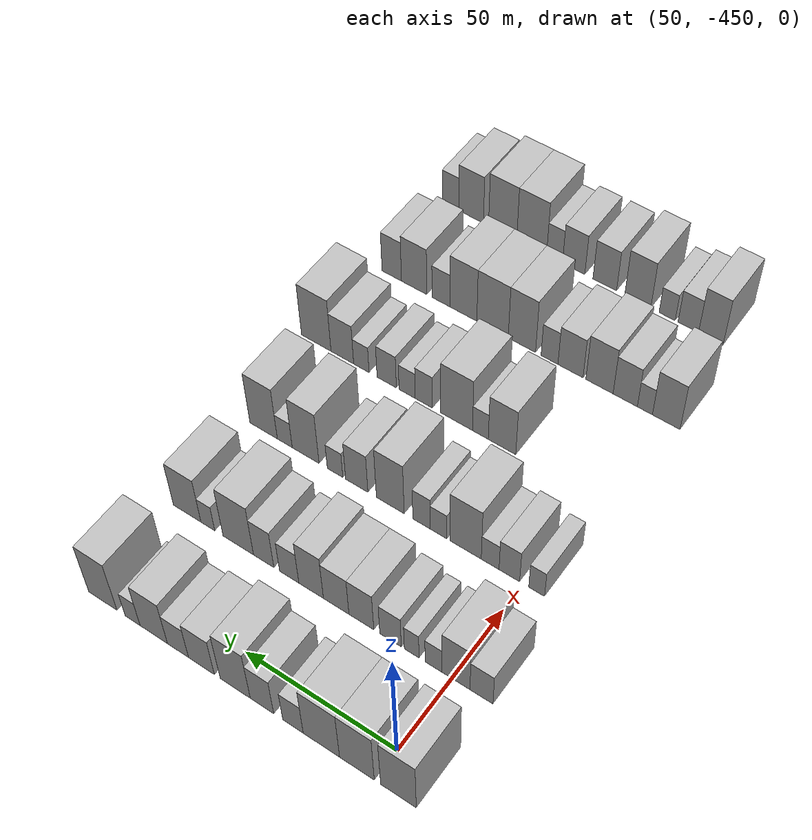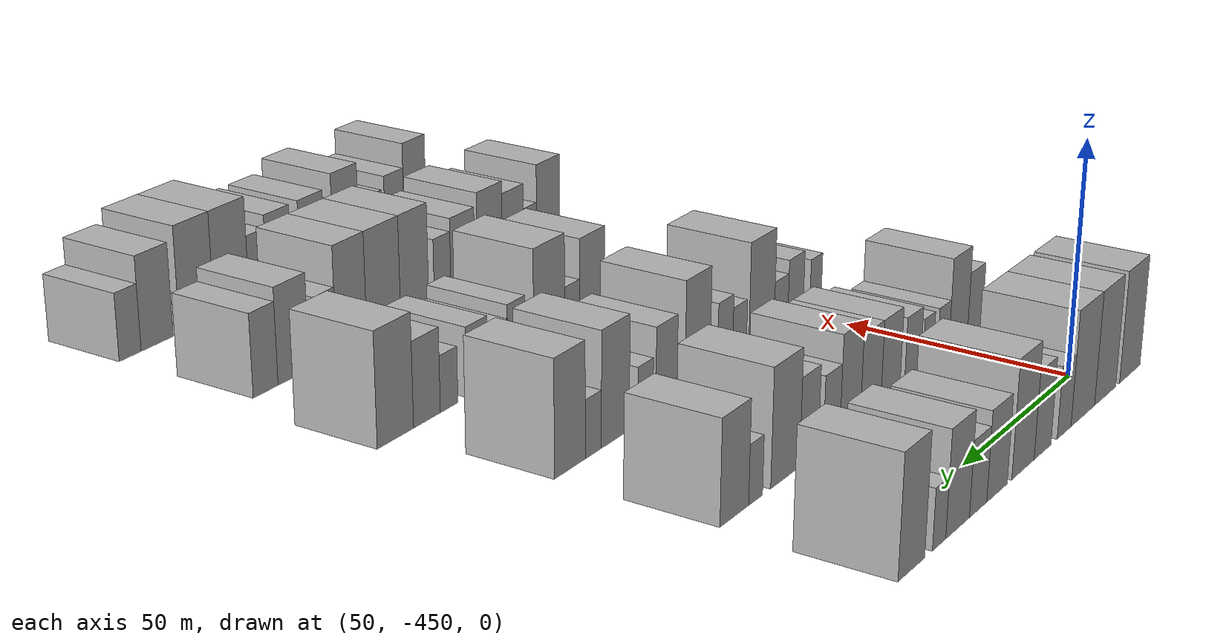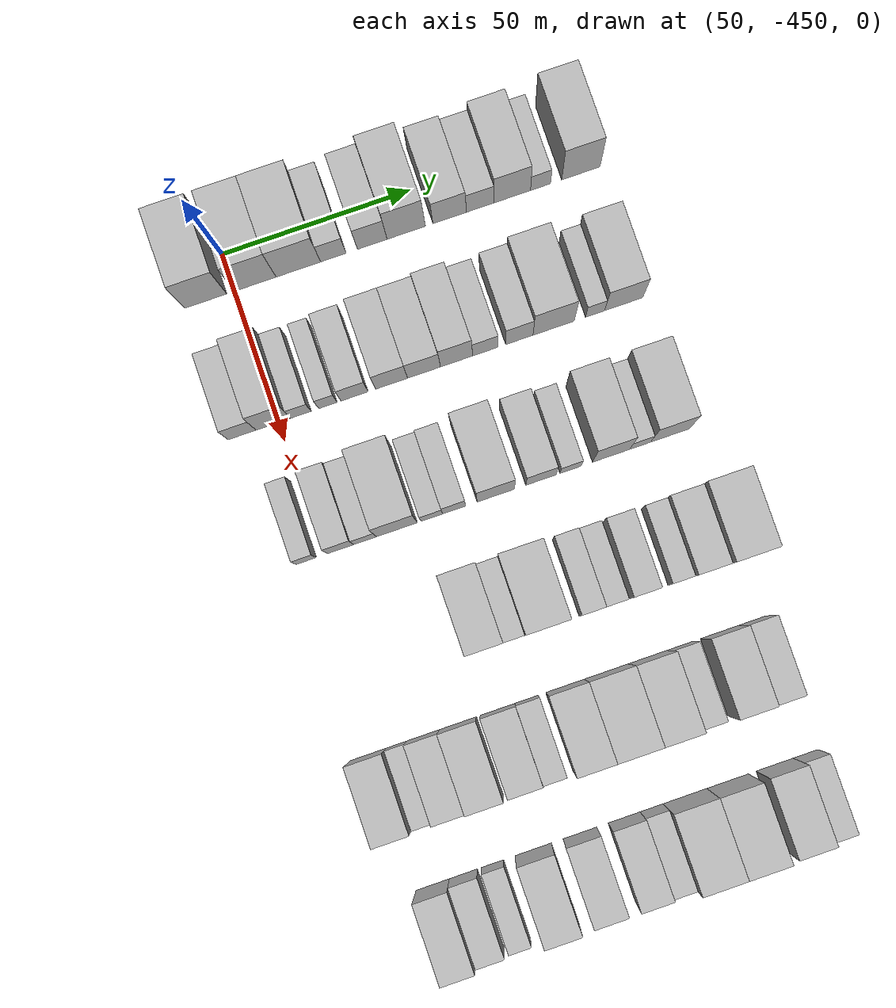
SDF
<sdf version="1.6">
 <world name="default">
  <model name="building_13">
   <static>1</static>
   <pose>50.0000 -457.4767 0 0.000000 0.000000 0.000000</pose>
   <link name="link">
    <pose>0 0 12.00 0 0 0</pose>
    <collision name="collision"><geometry><box><size>20.0000 11.1413 24.0000</size></box></geometry></collision>
    <visual name="visual">
     <cast_shadows>0</cast_shadows>
     <geometry><box><size>20.0000 11.1413 24.0000</size></box></geometry>
     <material>
      <script>
       <uri>model://HANNAS_wall/materials/scripts</uri>
       <uri>model://HANNAS_wall/materials/textures</uri>
       <name>vrc/HANNAS_wall</name>
      </script>
     </material>
    </visual>
   </link>
  </model>
  <model name="building_14">
   <static>1</static>
   <pose>50.0000 -444.3810 0 0.000000 0.000000 0.000000</pose>
   <link name="link">
    <pose>0 0 12.00 0 0 0</pose>
    <collision name="collision"><geometry><box><size>20.0000 11.0501 24.0000</size></box></geometry></collision>
    <visual name="visual">
     <cast_shadows>0</cast_shadows>
     <geometry><box><size>20.0000 11.0501 24.0000</size></box></geometry>
     <material>
      <script>
       <uri>model://HANNAS_wall/materials/scripts</uri>
       <uri>model://HANNAS_wall/materials/textures</uri>
       <name>vrc/HANNAS_wall</name>
      </script>
     </material>
    </visual>
   </link>
  </model>
  <model name="building_15">
   <static>1</static>
   <pose>50.0000 -432.9555 0 0.000000 0.000000 0.000000</pose>
   <link name="link">
    <pose>0 0 12.00 0 0 0</pose>
    <collision name="collision"><geometry><box><size>20.0000 11.8011 24.0000</size></box></geometry></collision>
    <visual name="visual">
     <cast_shadows>0</cast_shadows>
     <geometry><box><size>20.0000 11.8011 24.0000</size></box></geometry>
     <material>
      <script>
       <uri>model://HANNAS_wall/materials/scripts</uri>
       <uri>model://HANNAS_wall/materials/textures</uri>
       <name>vrc/HANNAS_wall</name>
      </script>
     </material>
    </visual>
   </link>
  </model>
  <model name="building_16">
   <static>1</static>
   <pose>50.0000 -423.6860 0 0.000000 0.000000 0.000000</pose>
   <link name="link">
    <pose>0 0 7.50 0 0 0</pose>
    <collision name="collision"><geometry><box><size>20.0000 6.7377 15.0000</size></box></geometry></collision>
    <visual name="visual">
     <cast_shadows>0</cast_shadows>
     <geometry><box><size>20.0000 6.7377 15.0000</size></box></geometry>
     <material>
      <script>
       <uri>model://HANNAS_wall/materials/scripts</uri>
       <uri>model://HANNAS_wall/materials/textures</uri>
       <name>vrc/HANNAS_wall</name>
      </script>
     </material>
    </visual>
   </link>
  </model>
  <model name="building_17">
   <static>1</static>
   <pose>50.0000 -413.3966 0 0.000000 0.000000 0.000000</pose>
   <link name="link">
    <pose>0 0 9.00 0 0 0</pose>
    <collision name="collision"><geometry><box><size>20.0000 7.8412 18.0000</size></box></geometry></collision>
    <visual name="visual">
     <cast_shadows>0</cast_shadows>
     <geometry><box><size>20.0000 7.8412 18.0000</size></box></geometry>
     <material>
      <script>
       <uri>model://HANNAS_wall/materials/scripts</uri>
       <uri>model://HANNAS_wall/materials/textures</uri>
       <name>vrc/HANNAS_wall</name>
      </script>
     </material>
    </visual>
   </link>
  </model>
  <model name="building_18">
   <static>1</static>
   <pose>50.0000 -404.3822 0 0.000000 0.000000 0.000000</pose>
   <link name="link">
    <pose>0 0 12.00 0 0 0</pose>
    <collision name="collision"><geometry><box><size>20.0000 10.1875 24.0000</size></box></geometry></collision>
    <visual name="visual">
     <cast_shadows>0</cast_shadows>
     <geometry><box><size>20.0000 10.1875 24.0000</size></box></geometry>
     <material>
      <script>
       <uri>model://HANNAS_wall/materials/scripts</uri>
       <uri>model://HANNAS_wall/materials/textures</uri>
       <name>vrc/HANNAS_wall</name>
      </script>
     </material>
    </visual>
   </link>
  </model>
  <model name="building_19">
   <static>1</static>
   <pose>50.0000 -392.8344 0 0.000000 0.000000 0.000000</pose>
   <link name="link">
    <pose>0 0 9.00 0 0 0</pose>
    <collision name="collision"><geometry><box><size>20.0000 8.9080 18.0000</size></box></geometry></collision>
    <visual name="visual">
     <cast_shadows>0</cast_shadows>
     <geometry><box><size>20.0000 8.9080 18.0000</size></box></geometry>
     <material>
      <script>
       <uri>model://HANNAS_wall/materials/scripts</uri>
       <uri>model://HANNAS_wall/materials/textures</uri>
       <name>vrc/HANNAS_wall</name>
      </script>
     </material>
    </visual>
   </link>
  </model>
  <model name="building_20">
   <static>1</static>
   <pose>50.0000 -384.7069 0 0.000000 0.000000 0.000000</pose>
   <link name="link">
    <pose>0 0 7.50 0 0 0</pose>
    <collision name="collision"><geometry><box><size>20.0000 7.3471 15.0000</size></box></geometry></collision>
    <visual name="visual">
     <cast_shadows>0</cast_shadows>
     <geometry><box><size>20.0000 7.3471 15.0000</size></box></geometry>
     <material>
      <script>
       <uri>model://HANNAS_wall/materials/scripts</uri>
       <uri>model://HANNAS_wall/materials/textures</uri>
       <name>vrc/HANNAS_wall</name>
      </script>
     </material>
    </visual>
   </link>
  </model>
  <model name="building_21">
   <static>1</static>
   <pose>50.0000 -376.1818 0 0.000000 0.000000 0.000000</pose>
   <link name="link">
    <pose>0 0 10.50 0 0 0</pose>
    <collision name="collision"><geometry><box><size>20.0000 9.7030 21.0000</size></box></geometry></collision>
    <visual name="visual">
     <cast_shadows>0</cast_shadows>
     <geometry><box><size>20.0000 9.7030 21.0000</size></box></geometry>
     <material>
      <script>
       <uri>model://HANNAS_wall/materials/scripts</uri>
       <uri>model://HANNAS_wall/materials/textures</uri>
       <name>vrc/HANNAS_wall</name>
      </script>
     </material>
    </visual>
   </link>
  </model>
  <model name="building_22">
   <static>1</static>
   <pose>50.0000 -368.6745 0 0.000000 0.000000 0.000000</pose>
   <link name="link">
    <pose>0 0 6.00 0 0 0</pose>
    <collision name="collision"><geometry><box><size>20.0000 5.3117 12.0000</size></box></geometry></collision>
    <visual name="visual">
     <cast_shadows>0</cast_shadows>
     <geometry><box><size>20.0000 5.3117 12.0000</size></box></geometry>
     <material>
      <script>
       <uri>model://HANNAS_wall/materials/scripts</uri>
       <uri>model://HANNAS_wall/materials/textures</uri>
       <name>vrc/HANNAS_wall</name>
      </script>
     </material>
    </visual>
   </link>
  </model>
  <model name="building_23">
   <static>1</static>
   <pose>50.0000 -357.9048 0 0.000000 0.000000 0.000000</pose>
   <link name="link">
    <pose>0 0 12.00 0 0 0</pose>
    <collision name="collision"><geometry><box><size>20.0000 10.2275 24.0000</size></box></geometry></collision>
    <visual name="visual">
     <cast_shadows>0</cast_shadows>
     <geometry><box><size>20.0000 10.2275 24.0000</size></box></geometry>
     <material>
      <script>
       <uri>model://HANNAS_wall/materials/scripts</uri>
       <uri>model://HANNAS_wall/materials/textures</uri>
       <name>vrc/HANNAS_wall</name>
      </script>
     </material>
    </visual>
   </link>
  </model>
  <model name="building_143">
   <static>1</static>
   <pose>85.0000 -459.5053 0 0.000000 0.000000 0.000000</pose>
   <link name="link">
    <pose>0 0 7.50 0 0 0</pose>
    <collision name="collision"><geometry><box><size>20.0000 7.3182 15.0000</size></box></geometry></collision>
    <visual name="visual">
     <cast_shadows>0</cast_shadows>
     <geometry><box><size>20.0000 7.3182 15.0000</size></box></geometry>
     <material>
      <script>
       <uri>model://HANNAS_wall/materials/scripts</uri>
       <uri>model://HANNAS_wall/materials/textures</uri>
       <name>vrc/HANNAS_wall</name>
      </script>
     </material>
    </visual>
   </link>
  </model>
  <model name="building_144">
   <static>1</static>
   <pose>85.0000 -451.3330 0 0.000000 0.000000 0.000000</pose>
   <link name="link">
    <pose>0 0 10.50 0 0 0</pose>
    <collision name="collision"><geometry><box><size>20.0000 9.0265 21.0000</size></box></geometry></collision>
    <visual name="visual">
     <cast_shadows>0</cast_shadows>
     <geometry><box><size>20.0000 9.0265 21.0000</size></box></geometry>
     <material>
      <script>
       <uri>model://HANNAS_wall/materials/scripts</uri>
       <uri>model://HANNAS_wall/materials/textures</uri>
       <name>vrc/HANNAS_wall</name>
      </script>
     </material>
    </visual>
   </link>
  </model>
  <model name="building_145">
   <static>1</static>
   <pose>85.0000 -444.0921 0 0.000000 0.000000 0.000000</pose>
   <link name="link">
    <pose>0 0 6.00 0 0 0</pose>
    <collision name="collision"><geometry><box><size>20.0000 5.4553 12.0000</size></box></geometry></collision>
    <visual name="visual">
     <cast_shadows>0</cast_shadows>
     <geometry><box><size>20.0000 5.4553 12.0000</size></box></geometry>
     <material>
      <script>
       <uri>model://HANNAS_wall/materials/scripts</uri>
       <uri>model://HANNAS_wall/materials/textures</uri>
       <name>vrc/HANNAS_wall</name>
      </script>
     </material>
    </visual>
   </link>
  </model>
  <model name="building_146">
   <static>1</static>
   <pose>85.0000 -436.9445 0 0.000000 0.000000 0.000000</pose>
   <link name="link">
    <pose>0 0 6.00 0 0 0</pose>
    <collision name="collision"><geometry><box><size>20.0000 4.8400 12.0000</size></box></geometry></collision>
    <visual name="visual">
     <cast_shadows>0</cast_shadows>
     <geometry><box><size>20.0000 4.8400 12.0000</size></box></geometry>
     <material>
      <script>
       <uri>model://HANNAS_wall/materials/scripts</uri>
       <uri>model://HANNAS_wall/materials/textures</uri>
       <name>vrc/HANNAS_wall</name>
      </script>
     </material>
    </visual>
   </link>
  </model>
  <model name="building_147">
   <static>1</static>
   <pose>85.0000 -429.9540 0 0.000000 0.000000 0.000000</pose>
   <link name="link">
    <pose>0 0 7.50 0 0 0</pose>
    <collision name="collision"><geometry><box><size>20.0000 7.1410 15.0000</size></box></geometry></collision>
    <visual name="visual">
     <cast_shadows>0</cast_shadows>
     <geometry><box><size>20.0000 7.1410 15.0000</size></box></geometry>
     <material>
      <script>
       <uri>model://HANNAS_wall/materials/scripts</uri>
       <uri>model://HANNAS_wall/materials/textures</uri>
       <name>vrc/HANNAS_wall</name>
      </script>
     </material>
    </visual>
   </link>
  </model>
  <model name="building_148">
   <static>1</static>
   <pose>85.0000 -420.1908 0 0.000000 0.000000 0.000000</pose>
   <link name="link">
    <pose>0 0 9.00 0 0 0</pose>
    <collision name="collision"><geometry><box><size>20.0000 8.3854 18.0000</size></box></geometry></collision>
    <visual name="visual">
     <cast_shadows>0</cast_shadows>
     <geometry><box><size>20.0000 8.3854 18.0000</size></box></geometry>
     <material>
      <script>
       <uri>model://HANNAS_wall/materials/scripts</uri>
       <uri>model://HANNAS_wall/materials/textures</uri>
       <name>vrc/HANNAS_wall</name>
      </script>
     </material>
    </visual>
   </link>
  </model>
  <model name="building_149">
   <static>1</static>
   <pose>85.0000 -411.6454 0 0.000000 0.000000 0.000000</pose>
   <link name="link">
    <pose>0 0 9.00 0 0 0</pose>
    <collision name="collision"><geometry><box><size>20.0000 8.7055 18.0000</size></box></geometry></collision>
    <visual name="visual">
     <cast_shadows>0</cast_shadows>
     <geometry><box><size>20.0000 8.7055 18.0000</size></box></geometry>
     <material>
      <script>
       <uri>model://HANNAS_wall/materials/scripts</uri>
       <uri>model://HANNAS_wall/materials/textures</uri>
       <name>vrc/HANNAS_wall</name>
      </script>
     </material>
    </visual>
   </link>
  </model>
  <model name="building_150">
   <static>1</static>
   <pose>85.0000 -403.0420 0 0.000000 0.000000 0.000000</pose>
   <link name="link">
    <pose>0 0 10.50 0 0 0</pose>
    <collision name="collision"><geometry><box><size>20.0000 8.5012 21.0000</size></box></geometry></collision>
    <visual name="visual">
     <cast_shadows>0</cast_shadows>
     <geometry><box><size>20.0000 8.5012 21.0000</size></box></geometry>
     <material>
      <script>
       <uri>model://HANNAS_wall/materials/scripts</uri>
       <uri>model://HANNAS_wall/materials/textures</uri>
       <name>vrc/HANNAS_wall</name>
      </script>
     </material>
    </visual>
   </link>
  </model>
  <model name="building_151">
   <static>1</static>
   <pose>85.0000 -395.4322 0 0.000000 0.000000 0.000000</pose>
   <link name="link">
    <pose>0 0 7.50 0 0 0</pose>
    <collision name="collision"><geometry><box><size>20.0000 6.7184 15.0000</size></box></geometry></collision>
    <visual name="visual">
     <cast_shadows>0</cast_shadows>
     <geometry><box><size>20.0000 6.7184 15.0000</size></box></geometry>
     <material>
      <script>
       <uri>model://HANNAS_wall/materials/scripts</uri>
       <uri>model://HANNAS_wall/materials/textures</uri>
       <name>vrc/HANNAS_wall</name>
      </script>
     </material>
    </visual>
   </link>
  </model>
  <model name="building_152">
   <static>1</static>
   <pose>85.0000 -386.4645 0 0.000000 0.000000 0.000000</pose>
   <link name="link">
    <pose>0 0 9.00 0 0 0</pose>
    <collision name="collision"><geometry><box><size>20.0000 7.2171 18.0000</size></box></geometry></collision>
    <visual name="visual">
     <cast_shadows>0</cast_shadows>
     <geometry><box><size>20.0000 7.2171 18.0000</size></box></geometry>
     <material>
      <script>
       <uri>model://HANNAS_wall/materials/scripts</uri>
       <uri>model://HANNAS_wall/materials/textures</uri>
       <name>vrc/HANNAS_wall</name>
      </script>
     </material>
    </visual>
   </link>
  </model>
  <model name="building_153">
   <static>1</static>
   <pose>85.0000 -377.3943 0 0.000000 0.000000 0.000000</pose>
   <link name="link">
    <pose>0 0 12.00 0 0 0</pose>
    <collision name="collision"><geometry><box><size>20.0000 10.9233 24.0000</size></box></geometry></collision>
    <visual name="visual">
     <cast_shadows>0</cast_shadows>
     <geometry><box><size>20.0000 10.9233 24.0000</size></box></geometry>
     <material>
      <script>
       <uri>model://HANNAS_wall/materials/scripts</uri>
       <uri>model://HANNAS_wall/materials/textures</uri>
       <name>vrc/HANNAS_wall</name>
      </script>
     </material>
    </visual>
   </link>
  </model>
  <model name="building_154">
   <static>1</static>
   <pose>85.0000 -366.4033 0 0.000000 0.000000 0.000000</pose>
   <link name="link">
    <pose>0 0 6.00 0 0 0</pose>
    <collision name="collision"><geometry><box><size>20.0000 5.0587 12.0000</size></box></geometry></collision>
    <visual name="visual">
     <cast_shadows>0</cast_shadows>
     <geometry><box><size>20.0000 5.0587 12.0000</size></box></geometry>
     <material>
      <script>
       <uri>model://HANNAS_wall/materials/scripts</uri>
       <uri>model://HANNAS_wall/materials/textures</uri>
       <name>vrc/HANNAS_wall</name>
      </script>
     </material>
    </visual>
   </link>
  </model>
  <model name="building_155">
   <static>1</static>
   <pose>85.0000 -358.8062 0 0.000000 0.000000 0.000000</pose>
   <link name="link">
    <pose>0 0 10.50 0 0 0</pose>
    <collision name="collision"><geometry><box><size>20.0000 10.1356 21.0000</size></box></geometry></collision>
    <visual name="visual">
     <cast_shadows>0</cast_shadows>
     <geometry><box><size>20.0000 10.1356 21.0000</size></box></geometry>
     <material>
      <script>
       <uri>model://HANNAS_wall/materials/scripts</uri>
       <uri>model://HANNAS_wall/materials/textures</uri>
       <name>vrc/HANNAS_wall</name>
      </script>
     </material>
    </visual>
   </link>
  </model>
  <model name="building_266">
   <static>1</static>
   <pose>120.0000 -454.3860 0 0.000000 0.000000 0.000000</pose>
   <link name="link">
    <pose>0 0 6.00 0 0 0</pose>
    <collision name="collision"><geometry><box><size>20.0000 5.1808 12.0000</size></box></geometry></collision>
    <visual name="visual">
     <cast_shadows>0</cast_shadows>
     <geometry><box><size>20.0000 5.1808 12.0000</size></box></geometry>
     <material>
      <script>
       <uri>model://HANNAS_wall/materials/scripts</uri>
       <uri>model://HANNAS_wall/materials/textures</uri>
       <name>vrc/HANNAS_wall</name>
      </script>
     </material>
    </visual>
   </link>
  </model>
  <model name="building_267">
   <static>1</static>
   <pose>120.0000 -445.3851 0 0.000000 0.000000 0.000000</pose>
   <link name="link">
    <pose>0 0 7.50 0 0 0</pose>
    <collision name="collision"><geometry><box><size>20.0000 6.8209 15.0000</size></box></geometry></collision>
    <visual name="visual">
     <cast_shadows>0</cast_shadows>
     <geometry><box><size>20.0000 6.8209 15.0000</size></box></geometry>
     <material>
      <script>
       <uri>model://HANNAS_wall/materials/scripts</uri>
       <uri>model://HANNAS_wall/materials/textures</uri>
       <name>vrc/HANNAS_wall</name>
      </script>
     </material>
    </visual>
   </link>
  </model>
  <model name="building_268">
   <static>1</static>
   <pose>120.0000 -439.0019 0 0.000000 0.000000 0.000000</pose>
   <link name="link">
    <pose>0 0 6.00 0 0 0</pose>
    <collision name="collision"><geometry><box><size>20.0000 5.9454 12.0000</size></box></geometry></collision>
    <visual name="visual">
     <cast_shadows>0</cast_shadows>
     <geometry><box><size>20.0000 5.9454 12.0000</size></box></geometry>
     <material>
      <script>
       <uri>model://HANNAS_wall/materials/scripts</uri>
       <uri>model://HANNAS_wall/materials/textures</uri>
       <name>vrc/HANNAS_wall</name>
      </script>
     </material>
    </visual>
   </link>
  </model>
  <model name="building_269">
   <static>1</static>
   <pose>120.0000 -430.7077 0 0.000000 0.000000 0.000000</pose>
   <link name="link">
    <pose>0 0 12.00 0 0 0</pose>
    <collision name="collision"><geometry><box><size>20.0000 10.6432 24.0000</size></box></geometry></collision>
    <visual name="visual">
     <cast_shadows>0</cast_shadows>
     <geometry><box><size>20.0000 10.6432 24.0000</size></box></geometry>
     <material>
      <script>
       <uri>model://HANNAS_wall/materials/scripts</uri>
       <uri>model://HANNAS_wall/materials/textures</uri>
       <name>vrc/HANNAS_wall</name>
      </script>
     </material>
    </visual>
   </link>
  </model>
  <model name="building_270">
   <static>1</static>
   <pose>120.0000 -421.5519 0 0.000000 0.000000 0.000000</pose>
   <link name="link">
    <pose>0 0 6.00 0 0 0</pose>
    <collision name="collision"><geometry><box><size>20.0000 5.6683 12.0000</size></box></geometry></collision>
    <visual name="visual">
     <cast_shadows>0</cast_shadows>
     <geometry><box><size>20.0000 5.6683 12.0000</size></box></geometry>
     <material>
      <script>
       <uri>model://HANNAS_wall/materials/scripts</uri>
       <uri>model://HANNAS_wall/materials/textures</uri>
       <name>vrc/HANNAS_wall</name>
      </script>
     </material>
    </visual>
   </link>
  </model>
  <model name="building_271">
   <static>1</static>
   <pose>120.0000 -415.6968 0 0.000000 0.000000 0.000000</pose>
   <link name="link">
    <pose>0 0 7.50 0 0 0</pose>
    <collision name="collision"><geometry><box><size>20.0000 6.0421 15.0000</size></box></geometry></collision>
    <visual name="visual">
     <cast_shadows>0</cast_shadows>
     <geometry><box><size>20.0000 6.0421 15.0000</size></box></geometry>
     <material>
      <script>
       <uri>model://HANNAS_wall/materials/scripts</uri>
       <uri>model://HANNAS_wall/materials/textures</uri>
       <name>vrc/HANNAS_wall</name>
      </script>
     </material>
    </visual>
   </link>
  </model>
  <model name="building_272">
   <static>1</static>
   <pose>120.0000 -404.7951 0 0.000000 0.000000 0.000000</pose>
   <link name="link">
    <pose>0 0 12.00 0 0 0</pose>
    <collision name="collision"><geometry><box><size>20.0000 9.7613 24.0000</size></box></geometry></collision>
    <visual name="visual">
     <cast_shadows>0</cast_shadows>
     <geometry><box><size>20.0000 9.7613 24.0000</size></box></geometry>
     <material>
      <script>
       <uri>model://HANNAS_wall/materials/scripts</uri>
       <uri>model://HANNAS_wall/materials/textures</uri>
       <name>vrc/HANNAS_wall</name>
      </script>
     </material>
    </visual>
   </link>
  </model>
  <model name="building_273">
   <static>1</static>
   <pose>120.0000 -392.9430 0 0.000000 0.000000 0.000000</pose>
   <link name="link">
    <pose>0 0 9.00 0 0 0</pose>
    <collision name="collision"><geometry><box><size>20.0000 7.9430 18.0000</size></box></geometry></collision>
    <visual name="visual">
     <cast_shadows>0</cast_shadows>
     <geometry><box><size>20.0000 7.9430 18.0000</size></box></geometry>
     <material>
      <script>
       <uri>model://HANNAS_wall/materials/scripts</uri>
       <uri>model://HANNAS_wall/materials/textures</uri>
       <name>vrc/HANNAS_wall</name>
      </script>
     </material>
    </visual>
   </link>
  </model>
  <model name="building_274">
   <static>1</static>
   <pose>120.0000 -385.1694 0 0.000000 0.000000 0.000000</pose>
   <link name="link">
    <pose>0 0 6.00 0 0 0</pose>
    <collision name="collision"><geometry><box><size>20.0000 5.6042 12.0000</size></box></geometry></collision>
    <visual name="visual">
     <cast_shadows>0</cast_shadows>
     <geometry><box><size>20.0000 5.6042 12.0000</size></box></geometry>
     <material>
      <script>
       <uri>model://HANNAS_wall/materials/scripts</uri>
       <uri>model://HANNAS_wall/materials/textures</uri>
       <name>vrc/HANNAS_wall</name>
      </script>
     </material>
    </visual>
   </link>
  </model>
  <model name="building_275">
   <static>1</static>
   <pose>120.0000 -374.4631 0 0.000000 0.000000 0.000000</pose>
   <link name="link">
    <pose>0 0 12.00 0 0 0</pose>
    <collision name="collision"><geometry><box><size>20.0000 9.8084 24.0000</size></box></geometry></collision>
    <visual name="visual">
     <cast_shadows>0</cast_shadows>
     <geometry><box><size>20.0000 9.8084 24.0000</size></box></geometry>
     <material>
      <script>
       <uri>model://HANNAS_wall/materials/scripts</uri>
       <uri>model://HANNAS_wall/materials/textures</uri>
       <name>vrc/HANNAS_wall</name>
      </script>
     </material>
    </visual>
   </link>
  </model>
  <model name="building_276">
   <static>1</static>
   <pose>120.0000 -366.7992 0 0.000000 0.000000 0.000000</pose>
   <link name="link">
    <pose>0 0 6.00 0 0 0</pose>
    <collision name="collision"><geometry><box><size>20.0000 5.5194 12.0000</size></box></geometry></collision>
    <visual name="visual">
     <cast_shadows>0</cast_shadows>
     <geometry><box><size>20.0000 5.5194 12.0000</size></box></geometry>
     <material>
      <script>
       <uri>model://HANNAS_wall/materials/scripts</uri>
       <uri>model://HANNAS_wall/materials/textures</uri>
       <name>vrc/HANNAS_wall</name>
      </script>
     </material>
    </visual>
   </link>
  </model>
  <model name="building_277">
   <static>1</static>
   <pose>120.0000 -358.9168 0 0.000000 0.000000 0.000000</pose>
   <link name="link">
    <pose>0 0 12.00 0 0 0</pose>
    <collision name="collision"><geometry><box><size>20.0000 10.2453 24.0000</size></box></geometry></collision>
    <visual name="visual">
     <cast_shadows>0</cast_shadows>
     <geometry><box><size>20.0000 10.2453 24.0000</size></box></geometry>
     <material>
      <script>
       <uri>model://HANNAS_wall/materials/scripts</uri>
       <uri>model://HANNAS_wall/materials/textures</uri>
       <name>vrc/HANNAS_wall</name>
      </script>
     </material>
    </visual>
   </link>
  </model>
  <model name="building_394">
   <static>1</static>
   <pose>155.0000 -419.9068 0 0.000000 0.000000 0.000000</pose>
   <link name="link">
    <pose>0 0 10.50 0 0 0</pose>
    <collision name="collision"><geometry><box><size>20.0000 9.6179 21.0000</size></box></geometry></collision>
    <visual name="visual">
     <cast_shadows>0</cast_shadows>
     <geometry><box><size>20.0000 9.6179 21.0000</size></box></geometry>
     <material>
      <script>
       <uri>model://HANNAS_wall/materials/scripts</uri>
       <uri>model://HANNAS_wall/materials/textures</uri>
       <name>vrc/HANNAS_wall</name>
      </script>
     </material>
    </visual>
   </link>
  </model>
  <model name="building_395">
   <static>1</static>
   <pose>155.0000 -412.3115 0 0.000000 0.000000 0.000000</pose>
   <link name="link">
    <pose>0 0 6.00 0 0 0</pose>
    <collision name="collision"><geometry><box><size>20.0000 5.5726 12.0000</size></box></geometry></collision>
    <visual name="visual">
     <cast_shadows>0</cast_shadows>
     <geometry><box><size>20.0000 5.5726 12.0000</size></box></geometry>
     <material>
      <script>
       <uri>model://HANNAS_wall/materials/scripts</uri>
       <uri>model://HANNAS_wall/materials/textures</uri>
       <name>vrc/HANNAS_wall</name>
      </script>
     </material>
    </visual>
   </link>
  </model>
  <model name="building_396">
   <static>1</static>
   <pose>155.0000 -403.8389 0 0.000000 0.000000 0.000000</pose>
   <link name="link">
    <pose>0 0 12.00 0 0 0</pose>
    <collision name="collision"><geometry><box><size>20.0000 11.3725 24.0000</size></box></geometry></collision>
    <visual name="visual">
     <cast_shadows>0</cast_shadows>
     <geometry><box><size>20.0000 11.3725 24.0000</size></box></geometry>
     <material>
      <script>
       <uri>model://HANNAS_wall/materials/scripts</uri>
       <uri>model://HANNAS_wall/materials/textures</uri>
       <name>vrc/HANNAS_wall</name>
      </script>
     </material>
    </visual>
   </link>
  </model>
  <model name="building_397">
   <static>1</static>
   <pose>155.0000 -392.0319 0 0.000000 0.000000 0.000000</pose>
   <link name="link">
    <pose>0 0 7.50 0 0 0</pose>
    <collision name="collision"><geometry><box><size>20.0000 6.2417 15.0000</size></box></geometry></collision>
    <visual name="visual">
     <cast_shadows>0</cast_shadows>
     <geometry><box><size>20.0000 6.2417 15.0000</size></box></geometry>
     <material>
      <script>
       <uri>model://HANNAS_wall/materials/scripts</uri>
       <uri>model://HANNAS_wall/materials/textures</uri>
       <name>vrc/HANNAS_wall</name>
      </script>
     </material>
    </visual>
   </link>
  </model>
  <model name="building_398">
   <static>1</static>
   <pose>155.0000 -385.9478 0 0.000000 0.000000 0.000000</pose>
   <link name="link">
    <pose>0 0 6.00 0 0 0</pose>
    <collision name="collision"><geometry><box><size>20.0000 5.9265 12.0000</size></box></geometry></collision>
    <visual name="visual">
     <cast_shadows>0</cast_shadows>
     <geometry><box><size>20.0000 5.9265 12.0000</size></box></geometry>
     <material>
      <script>
       <uri>model://HANNAS_wall/materials/scripts</uri>
       <uri>model://HANNAS_wall/materials/textures</uri>
       <name>vrc/HANNAS_wall</name>
      </script>
     </material>
    </visual>
   </link>
  </model>
  <model name="building_399">
   <static>1</static>
   <pose>155.0000 -378.4133 0 0.000000 0.000000 0.000000</pose>
   <link name="link">
    <pose>0 0 7.50 0 0 0</pose>
    <collision name="collision"><geometry><box><size>20.0000 7.1425 15.0000</size></box></geometry></collision>
    <visual name="visual">
     <cast_shadows>0</cast_shadows>
     <geometry><box><size>20.0000 7.1425 15.0000</size></box></geometry>
     <material>
      <script>
       <uri>model://HANNAS_wall/materials/scripts</uri>
       <uri>model://HANNAS_wall/materials/textures</uri>
       <name>vrc/HANNAS_wall</name>
      </script>
     </material>
    </visual>
   </link>
  </model>
  <model name="building_400">
   <static>1</static>
   <pose>155.0000 -368.9584 0 0.000000 0.000000 0.000000</pose>
   <link name="link">
    <pose>0 0 6.00 0 0 0</pose>
    <collision name="collision"><geometry><box><size>20.0000 5.7671 12.0000</size></box></geometry></collision>
    <visual name="visual">
     <cast_shadows>0</cast_shadows>
     <geometry><box><size>20.0000 5.7671 12.0000</size></box></geometry>
     <material>
      <script>
       <uri>model://HANNAS_wall/materials/scripts</uri>
       <uri>model://HANNAS_wall/materials/textures</uri>
       <name>vrc/HANNAS_wall</name>
      </script>
     </material>
    </visual>
   </link>
  </model>
  <model name="building_401">
   <static>1</static>
   <pose>155.0000 -361.7905 0 0.000000 0.000000 0.000000</pose>
   <link name="link">
    <pose>0 0 9.00 0 0 0</pose>
    <collision name="collision"><geometry><box><size>20.0000 8.5686 18.0000</size></box></geometry></collision>
    <visual name="visual">
     <cast_shadows>0</cast_shadows>
     <geometry><box><size>20.0000 8.5686 18.0000</size></box></geometry>
     <material>
      <script>
       <uri>model://HANNAS_wall/materials/scripts</uri>
       <uri>model://HANNAS_wall/materials/textures</uri>
       <name>vrc/HANNAS_wall</name>
      </script>
     </material>
    </visual>
   </link>
  </model>
  <model name="building_402">
   <static>1</static>
   <pose>155.0000 -351.8615 0 0.000000 0.000000 0.000000</pose>
   <link name="link">
    <pose>0 0 12.00 0 0 0</pose>
    <collision name="collision"><geometry><box><size>20.0000 11.2895 24.0000</size></box></geometry></collision>
    <visual name="visual">
     <cast_shadows>0</cast_shadows>
     <geometry><box><size>20.0000 11.2895 24.0000</size></box></geometry>
     <material>
      <script>
       <uri>model://HANNAS_wall/materials/scripts</uri>
       <uri>model://HANNAS_wall/materials/textures</uri>
       <name>vrc/HANNAS_wall</name>
      </script>
     </material>
    </visual>
   </link>
  </model>
  <model name="building_516">
   <static>1</static>
   <pose>190.0000 -455.0131 0 0.000000 0.000000 0.000000</pose>
   <link name="link">
    <pose>0 0 10.50 0 0 0</pose>
    <collision name="collision"><geometry><box><size>20.0000 9.3956 21.0000</size></box></geometry></collision>
    <visual name="visual">
     <cast_shadows>0</cast_shadows>
     <geometry><box><size>20.0000 9.3956 21.0000</size></box></geometry>
     <material>
      <script>
       <uri>model://HANNAS_wall/materials/scripts</uri>
       <uri>model://HANNAS_wall/materials/textures</uri>
       <name>vrc/HANNAS_wall</name>
      </script>
     </material>
    </visual>
   </link>
  </model>
  <model name="building_517">
   <static>1</static>
   <pose>190.0000 -447.7177 0 0.000000 0.000000 0.000000</pose>
   <link name="link">
    <pose>0 0 6.00 0 0 0</pose>
    <collision name="collision"><geometry><box><size>20.0000 5.1952 12.0000</size></box></geometry></collision>
    <visual name="visual">
     <cast_shadows>0</cast_shadows>
     <geometry><box><size>20.0000 5.1952 12.0000</size></box></geometry>
     <material>
      <script>
       <uri>model://HANNAS_wall/materials/scripts</uri>
       <uri>model://HANNAS_wall/materials/textures</uri>
       <name>vrc/HANNAS_wall</name>
      </script>
     </material>
    </visual>
   </link>
  </model>
  <model name="building_518">
   <static>1</static>
   <pose>190.0000 -440.9102 0 0.000000 0.000000 0.000000</pose>
   <link name="link">
    <pose>0 0 9.00 0 0 0</pose>
    <collision name="collision"><geometry><box><size>20.0000 8.4199 18.0000</size></box></geometry></collision>
    <visual name="visual">
     <cast_shadows>0</cast_shadows>
     <geometry><box><size>20.0000 8.4199 18.0000</size></box></geometry>
     <material>
      <script>
       <uri>model://HANNAS_wall/materials/scripts</uri>
       <uri>model://HANNAS_wall/materials/textures</uri>
       <name>vrc/HANNAS_wall</name>
      </script>
     </material>
    </visual>
   </link>
  </model>
  <model name="building_519">
   <static>1</static>
   <pose>190.0000 -431.9145 0 0.000000 0.000000 0.000000</pose>
   <link name="link">
    <pose>0 0 10.50 0 0 0</pose>
    <collision name="collision"><geometry><box><size>20.0000 9.5714 21.0000</size></box></geometry></collision>
    <visual name="visual">
     <cast_shadows>0</cast_shadows>
     <geometry><box><size>20.0000 9.5714 21.0000</size></box></geometry>
     <material>
      <script>
       <uri>model://HANNAS_wall/materials/scripts</uri>
       <uri>model://HANNAS_wall/materials/textures</uri>
       <name>vrc/HANNAS_wall</name>
      </script>
     </material>
    </visual>
   </link>
  </model>
  <model name="building_520">
   <static>1</static>
   <pose>190.0000 -421.6594 0 0.000000 0.000000 0.000000</pose>
   <link name="link">
    <pose>0 0 9.00 0 0 0</pose>
    <collision name="collision"><geometry><box><size>20.0000 8.9387 18.0000</size></box></geometry></collision>
    <visual name="visual">
     <cast_shadows>0</cast_shadows>
     <geometry><box><size>20.0000 8.9387 18.0000</size></box></geometry>
     <material>
      <script>
       <uri>model://HANNAS_wall/materials/scripts</uri>
       <uri>model://HANNAS_wall/materials/textures</uri>
       <name>vrc/HANNAS_wall</name>
      </script>
     </material>
    </visual>
   </link>
  </model>
  <model name="building_521">
   <static>1</static>
   <pose>190.0000 -414.1563 0 0.000000 0.000000 0.000000</pose>
   <link name="link">
    <pose>0 0 7.50 0 0 0</pose>
    <collision name="collision"><geometry><box><size>20.0000 6.0676 15.0000</size></box></geometry></collision>
    <visual name="visual">
     <cast_shadows>0</cast_shadows>
     <geometry><box><size>20.0000 6.0676 15.0000</size></box></geometry>
     <material>
      <script>
       <uri>model://HANNAS_wall/materials/scripts</uri>
       <uri>model://HANNAS_wall/materials/textures</uri>
       <name>vrc/HANNAS_wall</name>
      </script>
     </material>
    </visual>
   </link>
  </model>
  <model name="building_522">
   <static>1</static>
   <pose>190.0000 -404.1486 0 0.000000 0.000000 0.000000</pose>
   <link name="link">
    <pose>0 0 12.00 0 0 0</pose>
    <collision name="collision"><geometry><box><size>20.0000 9.9479 24.0000</size></box></geometry></collision>
    <visual name="visual">
     <cast_shadows>0</cast_shadows>
     <geometry><box><size>20.0000 9.9479 24.0000</size></box></geometry>
     <material>
      <script>
       <uri>model://HANNAS_wall/materials/scripts</uri>
       <uri>model://HANNAS_wall/materials/textures</uri>
       <name>vrc/HANNAS_wall</name>
      </script>
     </material>
    </visual>
   </link>
  </model>
  <model name="building_523">
   <static>1</static>
   <pose>190.0000 -393.3689 0 0.000000 0.000000 0.000000</pose>
   <link name="link">
    <pose>0 0 12.00 0 0 0</pose>
    <collision name="collision"><geometry><box><size>20.0000 11.6114 24.0000</size></box></geometry></collision>
    <visual name="visual">
     <cast_shadows>0</cast_shadows>
     <geometry><box><size>20.0000 11.6114 24.0000</size></box></geometry>
     <material>
      <script>
       <uri>model://HANNAS_wall/materials/scripts</uri>
       <uri>model://HANNAS_wall/materials/textures</uri>
       <name>vrc/HANNAS_wall</name>
      </script>
     </material>
    </visual>
   </link>
  </model>
  <model name="building_524">
   <static>1</static>
   <pose>190.0000 -382.4997 0 0.000000 0.000000 0.000000</pose>
   <link name="link">
    <pose>0 0 12.00 0 0 0</pose>
    <collision name="collision"><geometry><box><size>20.0000 10.1269 24.0000</size></box></geometry></collision>
    <visual name="visual">
     <cast_shadows>0</cast_shadows>
     <geometry><box><size>20.0000 10.1269 24.0000</size></box></geometry>
     <material>
      <script>
       <uri>model://HANNAS_wall/materials/scripts</uri>
       <uri>model://HANNAS_wall/materials/textures</uri>
       <name>vrc/HANNAS_wall</name>
      </script>
     </material>
    </visual>
   </link>
  </model>
  <model name="building_525">
   <static>1</static>
   <pose>190.0000 -374.0737 0 0.000000 0.000000 0.000000</pose>
   <link name="link">
    <pose>0 0 7.50 0 0 0</pose>
    <collision name="collision"><geometry><box><size>20.0000 6.7252 15.0000</size></box></geometry></collision>
    <visual name="visual">
     <cast_shadows>0</cast_shadows>
     <geometry><box><size>20.0000 6.7252 15.0000</size></box></geometry>
     <material>
      <script>
       <uri>model://HANNAS_wall/materials/scripts</uri>
       <uri>model://HANNAS_wall/materials/textures</uri>
       <name>vrc/HANNAS_wall</name>
      </script>
     </material>
    </visual>
   </link>
  </model>
  <model name="building_526">
   <static>1</static>
   <pose>190.0000 -363.8615 0 0.000000 0.000000 0.000000</pose>
   <link name="link">
    <pose>0 0 10.50 0 0 0</pose>
    <collision name="collision"><geometry><box><size>20.0000 9.6991 21.0000</size></box></geometry></collision>
    <visual name="visual">
     <cast_shadows>0</cast_shadows>
     <geometry><box><size>20.0000 9.6991 21.0000</size></box></geometry>
     <material>
      <script>
       <uri>model://HANNAS_wall/materials/scripts</uri>
       <uri>model://HANNAS_wall/materials/textures</uri>
       <name>vrc/HANNAS_wall</name>
      </script>
     </material>
    </visual>
   </link>
  </model>
  <model name="building_527">
   <static>1</static>
   <pose>190.0000 -355.2419 0 0.000000 0.000000 0.000000</pose>
   <link name="link">
    <pose>0 0 9.00 0 0 0</pose>
    <collision name="collision"><geometry><box><size>20.0000 7.5403 18.0000</size></box></geometry></collision>
    <visual name="visual">
     <cast_shadows>0</cast_shadows>
     <geometry><box><size>20.0000 7.5403 18.0000</size></box></geometry>
     <material>
      <script>
       <uri>model://HANNAS_wall/materials/scripts</uri>
       <uri>model://HANNAS_wall/materials/textures</uri>
       <name>vrc/HANNAS_wall</name>
      </script>
     </material>
    </visual>
   </link>
  </model>
  <model name="building_644">
   <static>1</static>
   <pose>225.0000 -450.5180 0 0.000000 0.000000 0.000000</pose>
   <link name="link">
    <pose>0 0 10.50 0 0 0</pose>
    <collision name="collision"><geometry><box><size>20.0000 8.5822 21.0000</size></box></geometry></collision>
    <visual name="visual">
     <cast_shadows>0</cast_shadows>
     <geometry><box><size>20.0000 8.5822 21.0000</size></box></geometry>
     <material>
      <script>
       <uri>model://HANNAS_wall/materials/scripts</uri>
       <uri>model://HANNAS_wall/materials/textures</uri>
       <name>vrc/HANNAS_wall</name>
      </script>
     </material>
    </visual>
   </link>
  </model>
  <model name="building_645">
   <static>1</static>
   <pose>225.0000 -442.5967 0 0.000000 0.000000 0.000000</pose>
   <link name="link">
    <pose>0 0 7.50 0 0 0</pose>
    <collision name="collision"><geometry><box><size>20.0000 7.2604 15.0000</size></box></geometry></collision>
    <visual name="visual">
     <cast_shadows>0</cast_shadows>
     <geometry><box><size>20.0000 7.2604 15.0000</size></box></geometry>
     <material>
      <script>
       <uri>model://HANNAS_wall/materials/scripts</uri>
       <uri>model://HANNAS_wall/materials/textures</uri>
       <name>vrc/HANNAS_wall</name>
      </script>
     </material>
    </visual>
   </link>
  </model>
  <model name="building_646">
   <static>1</static>
   <pose>225.0000 -435.0945 0 0.000000 0.000000 0.000000</pose>
   <link name="link">
    <pose>0 0 6.00 0 0 0</pose>
    <collision name="collision"><geometry><box><size>20.0000 5.7441 12.0000</size></box></geometry></collision>
    <visual name="visual">
     <cast_shadows>0</cast_shadows>
     <geometry><box><size>20.0000 5.7441 12.0000</size></box></geometry>
     <material>
      <script>
       <uri>model://HANNAS_wall/materials/scripts</uri>
       <uri>model://HANNAS_wall/materials/textures</uri>
       <name>vrc/HANNAS_wall</name>
      </script>
     </material>
    </visual>
   </link>
  </model>
  <model name="building_647">
   <static>1</static>
   <pose>225.0000 -424.5316 0 0.000000 0.000000 0.000000</pose>
   <link name="link">
    <pose>0 0 10.50 0 0 0</pose>
    <collision name="collision"><geometry><box><size>20.0000 9.3816 21.0000</size></box></geometry></collision>
    <visual name="visual">
     <cast_shadows>0</cast_shadows>
     <geometry><box><size>20.0000 9.3816 21.0000</size></box></geometry>
     <material>
      <script>
       <uri>model://HANNAS_wall/materials/scripts</uri>
       <uri>model://HANNAS_wall/materials/textures</uri>
       <name>vrc/HANNAS_wall</name>
      </script>
     </material>
    </visual>
   </link>
  </model>
  <model name="building_648">
   <static>1</static>
   <pose>225.0000 -412.4978 0 0.000000 0.000000 0.000000</pose>
   <link name="link">
    <pose>0 0 9.00 0 0 0</pose>
    <collision name="collision"><geometry><box><size>20.0000 8.6861 18.0000</size></box></geometry></collision>
    <visual name="visual">
     <cast_shadows>0</cast_shadows>
     <geometry><box><size>20.0000 8.6861 18.0000</size></box></geometry>
     <material>
      <script>
       <uri>model://HANNAS_wall/materials/scripts</uri>
       <uri>model://HANNAS_wall/materials/textures</uri>
       <name>vrc/HANNAS_wall</name>
      </script>
     </material>
    </visual>
   </link>
  </model>
  <model name="building_649">
   <static>1</static>
   <pose>225.0000 -400.9945 0 0.000000 0.000000 0.000000</pose>
   <link name="link">
    <pose>0 0 9.00 0 0 0</pose>
    <collision name="collision"><geometry><box><size>20.0000 8.3206 18.0000</size></box></geometry></collision>
    <visual name="visual">
     <cast_shadows>0</cast_shadows>
     <geometry><box><size>20.0000 8.3206 18.0000</size></box></geometry>
     <material>
      <script>
       <uri>model://HANNAS_wall/materials/scripts</uri>
       <uri>model://HANNAS_wall/materials/textures</uri>
       <name>vrc/HANNAS_wall</name>
      </script>
     </material>
    </visual>
   </link>
  </model>
  <model name="building_650">
   <static>1</static>
   <pose>225.0000 -393.8341 0 0.000000 0.000000 0.000000</pose>
   <link name="link">
    <pose>0 0 7.50 0 0 0</pose>
    <collision name="collision"><geometry><box><size>20.0000 6.0002 15.0000</size></box></geometry></collision>
    <visual name="visual">
     <cast_shadows>0</cast_shadows>
     <geometry><box><size>20.0000 6.0002 15.0000</size></box></geometry>
     <material>
      <script>
       <uri>model://HANNAS_wall/materials/scripts</uri>
       <uri>model://HANNAS_wall/materials/textures</uri>
       <name>vrc/HANNAS_wall</name>
      </script>
     </material>
    </visual>
   </link>
  </model>
  <model name="building_651">
   <static>1</static>
   <pose>225.0000 -385.1646 0 0.000000 0.000000 0.000000</pose>
   <link name="link">
    <pose>0 0 12.00 0 0 0</pose>
    <collision name="collision"><geometry><box><size>20.0000 11.3387 24.0000</size></box></geometry></collision>
    <visual name="visual">
     <cast_shadows>0</cast_shadows>
     <geometry><box><size>20.0000 11.3387 24.0000</size></box></geometry>
     <material>
      <script>
       <uri>model://HANNAS_wall/materials/scripts</uri>
       <uri>model://HANNAS_wall/materials/textures</uri>
       <name>vrc/HANNAS_wall</name>
      </script>
     </material>
    </visual>
   </link>
  </model>
  <model name="building_652">
   <static>1</static>
   <pose>225.0000 -374.0682 0 0.000000 0.000000 0.000000</pose>
   <link name="link">
    <pose>0 0 12.00 0 0 0</pose>
    <collision name="collision"><geometry><box><size>20.0000 10.8541 24.0000</size></box></geometry></collision>
    <visual name="visual">
     <cast_shadows>0</cast_shadows>
     <geometry><box><size>20.0000 10.8541 24.0000</size></box></geometry>
     <material>
      <script>
       <uri>model://HANNAS_wall/materials/scripts</uri>
       <uri>model://HANNAS_wall/materials/textures</uri>
       <name>vrc/HANNAS_wall</name>
      </script>
     </material>
    </visual>
   </link>
  </model>
  <model name="building_653">
   <static>1</static>
   <pose>225.0000 -361.8143 0 0.000000 0.000000 0.000000</pose>
   <link name="link">
    <pose>0 0 10.50 0 0 0</pose>
    <collision name="collision"><geometry><box><size>20.0000 9.6538 21.0000</size></box></geometry></collision>
    <visual name="visual">
     <cast_shadows>0</cast_shadows>
     <geometry><box><size>20.0000 9.6538 21.0000</size></box></geometry>
     <material>
      <script>
       <uri>model://HANNAS_wall/materials/scripts</uri>
       <uri>model://HANNAS_wall/materials/textures</uri>
       <name>vrc/HANNAS_wall</name>
      </script>
     </material>
    </visual>
   </link>
  </model>
  <model name="building_654">
   <static>1</static>
   <pose>225.0000 -353.7510 0 0.000000 0.000000 0.000000</pose>
   <link name="link">
    <pose>0 0 7.50 0 0 0</pose>
    <collision name="collision"><geometry><box><size>20.0000 6.4726 15.0000</size></box></geometry></collision>
    <visual name="visual">
     <cast_shadows>0</cast_shadows>
     <geometry><box><size>20.0000 6.4726 15.0000</size></box></geometry>
     <material>
      <script>
       <uri>model://HANNAS_wall/materials/scripts</uri>
       <uri>model://HANNAS_wall/materials/textures</uri>
       <name>vrc/HANNAS_wall</name>
      </script>
     </material>
    </visual>
   </link>
  </model>
 </world>
</sdf>
